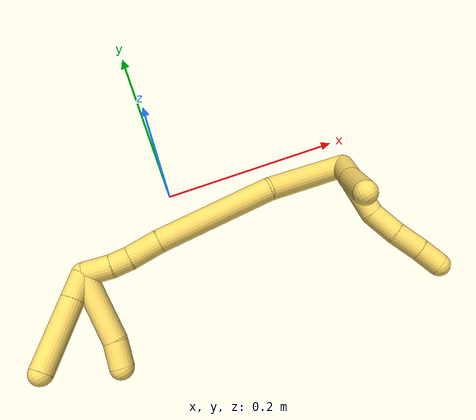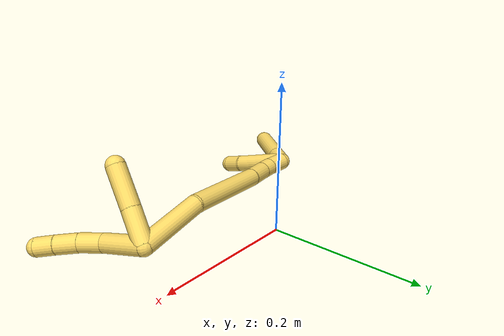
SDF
<sdf version="1.7">
 <world name="default">
  <model name="photoneo_s_sensor">
   <static>1</static>
   <pose>0 0 2 1.57079 1.57079 3.14159</pose>
   <link name="link">
    <inertial><mass>0.1</mass></inertial>
    <sensor name="sensor" type="depth">
     <update_rate>30</update_rate>
     <camera>
      <horizontal_fov>1.22</horizontal_fov>
      <image><width>1920</width><height>1200</height><format>B8G8R8</format></image>
      <clip><near>0.1</near><far>4</far></clip>
      <depth_camera><output>points</output></depth_camera>
     </camera>
     <plugin name="camera_plugin" filename="libgazebo_ros_depth_camera.so">
      <baseline>0.2</baseline>
      <alwaysOn>1</alwaysOn>
      <updateRate>0.0</updateRate>
      <cameraName>camera_ir</cameraName>
      <imageTopicName>/camera/color/image_raw</imageTopicName>
      <cameraInfoTopicName>/camera/color/camera_info</cameraInfoTopicName>
      <depthImageTopicName>/camera/depth/image_raw</depthImageTopicName>
      <depthImageCameraInfoTopicName>/camera/depth/camera_info</depthImageCameraInfoTopicName>
      <pointCloudTopicName>/camera/depth/points</pointCloudTopicName>
      <frameName>fr_optical</frameName>
      <pointCloudCutoff>0.1</pointCloudCutoff>
      <pointCloudCutoffMax>2.0</pointCloudCutoffMax>
      <distortionK1>0</distortionK1>
      <distortionK2>0</distortionK2>
      <distortionK3>0</distortionK3>
      <distortionT1>0</distortionT1>
      <distortionT2>0</distortionT2>
      <CxPrime>0</CxPrime>
      <Cx>0</Cx>
      <Cy>0</Cy>
      <focalLength>0</focalLength>
      <hackBaseline>0</hackBaseline>
     </plugin>
    </sensor>
   </link>
  </model>
  <model name="bin">
   <static>1</static>
   <link name="bottom">
    <collision name="collision-bottom">
     <pose>0 0 -0.01 0 -0 0</pose>
     <geometry><box><size>0.8 0.6 0.02</size></box></geometry>
     <surface>
      <friction><ode><mu>100</mu><mu2>100</mu2></ode></friction>
      <contact><collide_bitmask>65535</collide_bitmask></contact>
     </surface>
    </collision>
   </link>
   <link name="west_wall">
    <collision name="collision-west_wall">
     <pose>-0.41 0 0.1 0 -0 0</pose>
     <geometry><box><size>0.02 0.6 0.2</size></box></geometry>
     <surface>
      <friction><ode><mu>100</mu><mu2>100</mu2></ode></friction>
      <contact><collide_bitmask>65535</collide_bitmask></contact>
     </surface>
    </collision>
   </link>
   <link name="east_wall">
    <collision name="collision-east_wall">
     <pose>0.41 0 0.1 0 -0 0</pose>
     <geometry><box><size>0.02 0.6 0.2</size></box></geometry>
     <surface>
      <friction><ode><mu>100</mu><mu2>100</mu2></ode></friction>
      <contact><collide_bitmask>65535</collide_bitmask></contact>
     </surface>
    </collision>
   </link>
   <link name="south_wall">
    <collision name="collision-south_wall">
     <pose>0 -0.31 0.1 0 -0 0</pose>
     <geometry><box><size>0.8 0.02 0.2</size></box></geometry>
     <surface>
      <friction><ode><mu>100</mu><mu2>100</mu2></ode></friction>
      <contact><collide_bitmask>65535</collide_bitmask></contact>
     </surface>
    </collision>
   </link>
   <link name="north_wall">
    <collision name="collision-north_wall">
     <pose>0 0.31 0.1 0 -0 0</pose>
     <geometry><box><size>0.8 0.02 0.2</size></box></geometry>
     <surface>
      <friction><ode><mu>100</mu><mu2>100</mu2></ode></friction>
      <contact><collide_bitmask>65535</collide_bitmask></contact>
     </surface>
    </collision>
   </link>
  </model>
  <model name="5">
   <static>0</static>
   <link name="5">
    <collision name="collision-cylinder-e_1_2_8">
     <pose>-0.000439 0.000918 0.03058 -0.03002 -0.014344 0.000215</pose>
     <geometry><cylinder><radius>0.0125</radius><length>0.061194</length></cylinder></geometry>
     <surface>
      <friction><ode><mu>1.16</mu><mu2>1.16</mu2><slip1>0</slip1><slip2>0</slip2></ode></friction>
      <contact><ode><kp>1e+06</kp><kd>1</kd><max_vel>0</max_vel><min_depth>0.001</min_depth></ode></contact>
     </surface>
    </collision>
    <visual name="visual-cylinder-e_1_2_8">
     <pose>-0.000439 0.000918 0.03058 -0.03002 -0.014344 0.000215</pose>
     <geometry><cylinder><radius>0.0125</radius><length>0.061194</length></cylinder></geometry>
     <material><ambient>1 0.858824 0.4 1</ambient></material>
    </visual>
    <collision name="collision-cylinder-e_2_8_9">
     <pose>0.003906 0.003093 0.076479 -0.081831 0.301693 -0.012445</pose>
     <geometry><cylinder><radius>0.0125</radius><length>0.032196</length></cylinder></geometry>
     <surface>
      <friction><ode><mu>1.16</mu><mu2>1.16</mu2><slip1>0</slip1><slip2>0</slip2></ode></friction>
      <contact><ode><kp>1e+06</kp><kd>1</kd><max_vel>0</max_vel><min_depth>0.001</min_depth></ode></contact>
     </surface>
    </collision>
    <visual name="visual-cylinder-e_2_8_9">
     <pose>0.003906 0.003093 0.076479 -0.081831 0.301693 -0.012445</pose>
     <geometry><cylinder><radius>0.0125</radius><length>0.032196</length></cylinder></geometry>
     <material><ambient>1 0.858824 0.4 1</ambient></material>
    </visual>
    <collision name="collision-cylinder-e_3_9_10">
     <pose>0.014752 0.004587 0.105826 -0.01691 0.407916 -0.003498</pose>
     <geometry><cylinder><radius>0.0125</radius><length>0.030567</length></cylinder></geometry>
     <surface>
      <friction><ode><mu>1.16</mu><mu2>1.16</mu2><slip1>0</slip1><slip2>0</slip2></ode></friction>
      <contact><ode><kp>1e+06</kp><kd>1</kd><max_vel>0</max_vel><min_depth>0.001</min_depth></ode></contact>
     </surface>
    </collision>
    <visual name="visual-cylinder-e_3_9_10">
     <pose>0.014752 0.004587 0.105826 -0.01691 0.407916 -0.003498</pose>
     <geometry><cylinder><radius>0.0125</radius><length>0.030567</length></cylinder></geometry>
     <material><ambient>1 0.858824 0.4 1</ambient></material>
    </visual>
    <collision name="collision-cylinder-e_4_10_6">
     <pose>0.02533 0.004506 0.132063 0.026022 0.354154 0.004657</pose>
     <geometry><cylinder><radius>0.0125</radius><length>0.026043</length></cylinder></geometry>
     <surface>
      <friction><ode><mu>1.16</mu><mu2>1.16</mu2><slip1>0</slip1><slip2>0</slip2></ode></friction>
      <contact><ode><kp>1e+06</kp><kd>1</kd><max_vel>0</max_vel><min_depth>0.001</min_depth></ode></contact>
     </surface>
    </collision>
    <visual name="visual-cylinder-e_4_10_6">
     <pose>0.02533 0.004506 0.132063 0.026022 0.354154 0.004657</pose>
     <geometry><cylinder><radius>0.0125</radius><length>0.026043</length></cylinder></geometry>
     <material><ambient>1 0.858824 0.4 1</ambient></material>
    </visual>
    <collision name="collision-cylinder-e_1_2_11">
     <pose>-0.004574 0.020685 0.009047 -1.1585 -0.199872 0.130984</pose>
     <geometry><cylinder><radius>0.0125</radius><length>0.046071</length></cylinder></geometry>
     <surface>
      <friction><ode><mu>1.16</mu><mu2>1.16</mu2><slip1>0</slip1><slip2>0</slip2></ode></friction>
      <contact><ode><kp>1e+06</kp><kd>1</kd><max_vel>0</max_vel><min_depth>0.001</min_depth></ode></contact>
     </surface>
    </collision>
    <visual name="visual-cylinder-e_1_2_11">
     <pose>-0.004574 0.020685 0.009047 -1.1585 -0.199872 0.130984</pose>
     <geometry><cylinder><radius>0.0125</radius><length>0.046071</length></cylinder></geometry>
     <material><ambient>1 0.858824 0.4 1</ambient></material>
    </visual>
    <collision name="collision-cylinder-e_2_11_5">
     <pose>-0.012641 0.066361 0.027598 -1.20741 -0.129941 0.089672</pose>
     <geometry><cylinder><radius>0.0125</radius><length>0.053929</length></cylinder></geometry>
     <surface>
      <friction><ode><mu>1.16</mu><mu2>1.16</mu2><slip1>0</slip1><slip2>0</slip2></ode></friction>
      <contact><ode><kp>1e+06</kp><kd>1</kd><max_vel>0</max_vel><min_depth>0.001</min_depth></ode></contact>
     </surface>
    </collision>
    <visual name="visual-cylinder-e_2_11_5">
     <pose>-0.012641 0.066361 0.027598 -1.20741 -0.129941 0.089672</pose>
     <geometry><cylinder><radius>0.0125</radius><length>0.053929</length></cylinder></geometry>
     <material><ambient>1 0.858824 0.4 1</ambient></material>
    </visual>
    <collision name="collision-cylinder-e_1_2_12">
     <pose>-0.042597 0.01354 -0.009034 -2.15916 -1.20581 1.82037</pose>
     <geometry><cylinder><radius>0.0125</radius><length>0.091202</length></cylinder></geometry>
     <surface>
      <friction><ode><mu>1.16</mu><mu2>1.16</mu2><slip1>0</slip1><slip2>0</slip2></ode></friction>
      <contact><ode><kp>1e+06</kp><kd>1</kd><max_vel>0</max_vel><min_depth>0.001</min_depth></ode></contact>
     </surface>
    </collision>
    <visual name="visual-cylinder-e_1_2_12">
     <pose>-0.042597 0.01354 -0.009034 -2.15916 -1.20581 1.82037</pose>
     <geometry><cylinder><radius>0.0125</radius><length>0.091202</length></cylinder></geometry>
     <material><ambient>1 0.858824 0.4 1</ambient></material>
    </visual>
    <collision name="collision-cylinder-e_2_12_13">
     <pose>-0.147938 0.030487 -0.024182 -2.63325 -1.45969 2.57637</pose>
     <geometry><cylinder><radius>0.0125</radius><length>0.126266</length></cylinder></geometry>
     <surface>
      <friction><ode><mu>1.16</mu><mu2>1.16</mu2><slip1>0</slip1><slip2>0</slip2></ode></friction>
      <contact><ode><kp>1e+06</kp><kd>1</kd><max_vel>0</max_vel><min_depth>0.001</min_depth></ode></contact>
     </surface>
    </collision>
    <visual name="visual-cylinder-e_2_12_13">
     <pose>-0.147938 0.030487 -0.024182 -2.63325 -1.45969 2.57637</pose>
     <geometry><cylinder><radius>0.0125</radius><length>0.126266</length></cylinder></geometry>
     <material><ambient>1 0.858824 0.4 1</ambient></material>
    </visual>
    <collision name="collision-cylinder-e_3_13_14">
     <pose>-0.227503 0.03539 -0.03055 -1.73791 -1.48084 1.64854</pose>
     <geometry><cylinder><radius>0.0125</radius><length>0.033779</length></cylinder></geometry>
     <surface>
      <friction><ode><mu>1.16</mu><mu2>1.16</mu2><slip1>0</slip1><slip2>0</slip2></ode></friction>
      <contact><ode><kp>1e+06</kp><kd>1</kd><max_vel>0</max_vel><min_depth>0.001</min_depth></ode></contact>
     </surface>
    </collision>
    <visual name="visual-cylinder-e_3_13_14">
     <pose>-0.227503 0.03539 -0.03055 -1.73791 -1.48084 1.64854</pose>
     <geometry><cylinder><radius>0.0125</radius><length>0.033779</length></cylinder></geometry>
     <material><ambient>1 0.858824 0.4 1</ambient></material>
    </visual>
    <collision name="collision-cylinder-e_4_14_15">
     <pose>-0.254201 0.038017 -0.031956 -2.36629 -1.40871 2.24573</pose>
     <geometry><cylinder><radius>0.0125</radius><length>0.020017</length></cylinder></geometry>
     <surface>
      <friction><ode><mu>1.16</mu><mu2>1.16</mu2><slip1>0</slip1><slip2>0</slip2></ode></friction>
      <contact><ode><kp>1e+06</kp><kd>1</kd><max_vel>0</max_vel><min_depth>0.001</min_depth></ode></contact>
     </surface>
    </collision>
    <visual name="visual-cylinder-e_4_14_15">
     <pose>-0.254201 0.038017 -0.031956 -2.36629 -1.40871 2.24573</pose>
     <geometry><cylinder><radius>0.0125</radius><length>0.020017</length></cylinder></geometry>
     <material><ambient>1 0.858824 0.4 1</ambient></material>
    </visual>
    <collision name="collision-cylinder-e_5_15_1">
     <pose>-0.277875 0.040443 -0.036908 -2.81278 -1.28768 2.7065</pose>
     <geometry><cylinder><radius>0.0125</radius><length>0.028736</length></cylinder></geometry>
     <surface>
      <friction><ode><mu>1.16</mu><mu2>1.16</mu2><slip1>0</slip1><slip2>0</slip2></ode></friction>
      <contact><ode><kp>1e+06</kp><kd>1</kd><max_vel>0</max_vel><min_depth>0.001</min_depth></ode></contact>
     </surface>
    </collision>
    <visual name="visual-cylinder-e_5_15_1">
     <pose>-0.277875 0.040443 -0.036908 -2.81278 -1.28768 2.7065</pose>
     <geometry><cylinder><radius>0.0125</radius><length>0.028736</length></cylinder></geometry>
     <material><ambient>1 0.858824 0.4 1</ambient></material>
    </visual>
    <collision name="collision-cylinder-e_1_1_16">
     <pose>-0.294386 0.041411 -0.003949 0.008926 -0.073737 -0.000329</pose>
     <geometry><cylinder><radius>0.0125</radius><length>0.073718</length></cylinder></geometry>
     <surface>
      <friction><ode><mu>1.16</mu><mu2>1.16</mu2><slip1>0</slip1><slip2>0</slip2></ode></friction>
      <contact><ode><kp>1e+06</kp><kd>1</kd><max_vel>0</max_vel><min_depth>0.001</min_depth></ode></contact>
     </surface>
    </collision>
    <visual name="visual-cylinder-e_1_1_16">
     <pose>-0.294386 0.041411 -0.003949 0.008926 -0.073737 -0.000329</pose>
     <geometry><cylinder><radius>0.0125</radius><length>0.073718</length></cylinder></geometry>
     <material><ambient>1 0.858824 0.4 1</ambient></material>
    </visual>
    <collision name="collision-cylinder-e_2_16_4">
     <pose>-0.300614 0.041041 0.045471 0.003349 -0.270572 -0.000456</pose>
     <geometry><cylinder><radius>0.0125</radius><length>0.026282</length></cylinder></geometry>
     <surface>
      <friction><ode><mu>1.16</mu><mu2>1.16</mu2><slip1>0</slip1><slip2>0</slip2></ode></friction>
      <contact><ode><kp>1e+06</kp><kd>1</kd><max_vel>0</max_vel><min_depth>0.001</min_depth></ode></contact>
     </surface>
    </collision>
    <visual name="visual-cylinder-e_2_16_4">
     <pose>-0.300614 0.041041 0.045471 0.003349 -0.270572 -0.000456</pose>
     <geometry><cylinder><radius>0.0125</radius><length>0.026282</length></cylinder></geometry>
     <material><ambient>1 0.858824 0.4 1</ambient></material>
    </visual>
    <collision name="collision-cylinder-e_1_1_17">
     <pose>-0.30162 0.045015 -0.032363 -0.374101 -0.837432 0.16806</pose>
     <geometry><cylinder><radius>0.0125</radius><length>0.026783</length></cylinder></geometry>
     <surface>
      <friction><ode><mu>1.16</mu><mu2>1.16</mu2><slip1>0</slip1><slip2>0</slip2></ode></friction>
      <contact><ode><kp>1e+06</kp><kd>1</kd><max_vel>0</max_vel><min_depth>0.001</min_depth></ode></contact>
     </surface>
    </collision>
    <visual name="visual-cylinder-e_1_1_17">
     <pose>-0.30162 0.045015 -0.032363 -0.374101 -0.837432 0.16806</pose>
     <geometry><cylinder><radius>0.0125</radius><length>0.026783</length></cylinder></geometry>
     <material><ambient>1 0.858824 0.4 1</ambient></material>
    </visual>
    <collision name="collision-cylinder-e_2_17_3">
     <pose>-0.338115 0.058773 -0.001093 -0.428829 -0.811254 0.18649</pose>
     <geometry><cylinder><radius>0.0125</radius><length>0.073217</length></cylinder></geometry>
     <surface>
      <friction><ode><mu>1.16</mu><mu2>1.16</mu2><slip1>0</slip1><slip2>0</slip2></ode></friction>
      <contact><ode><kp>1e+06</kp><kd>1</kd><max_vel>0</max_vel><min_depth>0.001</min_depth></ode></contact>
     </surface>
    </collision>
    <visual name="visual-cylinder-e_2_17_3">
     <pose>-0.338115 0.058773 -0.001093 -0.428829 -0.811254 0.18649</pose>
     <geometry><cylinder><radius>0.0125</radius><length>0.073217</length></cylinder></geometry>
     <material><ambient>1 0.858824 0.4 1</ambient></material>
    </visual>
    <collision name="collision-sphere-3">
     <pose>-0.364662 0.069254 0.021833 0 -0 0</pose>
     <geometry><sphere><radius>0.0125</radius></sphere></geometry>
     <surface>
      <friction><ode><mu>1.16</mu><mu2>1.16</mu2><slip1>0</slip1><slip2>0</slip2></ode></friction>
      <contact><ode><kp>1e+06</kp><kd>1</kd><max_vel>0</max_vel><min_depth>0.001</min_depth></ode></contact>
     </surface>
    </collision>
    <visual name="visual-sphere-3">
     <pose>-0.364662 0.069254 0.021833 0 -0 0</pose>
     <geometry><sphere><radius>0.0125</radius></sphere></geometry>
     <material><ambient>1 0.858824 0.4 1</ambient></material>
    </visual>
    <collision name="collision-sphere-17">
     <pose>-0.311569 0.048291 -0.024019 0 -0 0</pose>
     <geometry><sphere><radius>0.0125</radius></sphere></geometry>
     <surface>
      <friction><ode><mu>1.16</mu><mu2>1.16</mu2><slip1>0</slip1><slip2>0</slip2></ode></friction>
      <contact><ode><kp>1e+06</kp><kd>1</kd><max_vel>0</max_vel><min_depth>0.001</min_depth></ode></contact>
     </surface>
    </collision>
    <visual name="visual-sphere-17">
     <pose>-0.311569 0.048291 -0.024019 0 -0 0</pose>
     <geometry><sphere><radius>0.0125</radius></sphere></geometry>
     <material><ambient>1 0.858824 0.4 1</ambient></material>
    </visual>
    <collision name="collision-sphere-4">
     <pose>-0.304126 0.040999 0.058134 0 -0 0</pose>
     <geometry><sphere><radius>0.0125</radius></sphere></geometry>
     <surface>
      <friction><ode><mu>1.16</mu><mu2>1.16</mu2><slip1>0</slip1><slip2>0</slip2></ode></friction>
      <contact><ode><kp>1e+06</kp><kd>1</kd><max_vel>0</max_vel><min_depth>0.001</min_depth></ode></contact>
     </surface>
    </collision>
    <visual name="visual-sphere-4">
     <pose>-0.304126 0.040999 0.058134 0 -0 0</pose>
     <geometry><sphere><radius>0.0125</radius></sphere></geometry>
     <material><ambient>1 0.858824 0.4 1</ambient></material>
    </visual>
    <collision name="collision-sphere-16">
     <pose>-0.297102 0.041083 0.032808 0 -0 0</pose>
     <geometry><sphere><radius>0.0125</radius></sphere></geometry>
     <surface>
      <friction><ode><mu>1.16</mu><mu2>1.16</mu2><slip1>0</slip1><slip2>0</slip2></ode></friction>
      <contact><ode><kp>1e+06</kp><kd>1</kd><max_vel>0</max_vel><min_depth>0.001</min_depth></ode></contact>
     </surface>
    </collision>
    <visual name="visual-sphere-16">
     <pose>-0.297102 0.041083 0.032808 0 -0 0</pose>
     <geometry><sphere><radius>0.0125</radius></sphere></geometry>
     <material><ambient>1 0.858824 0.4 1</ambient></material>
    </visual>
    <collision name="collision-sphere-1">
     <pose>-0.291671 0.04174 -0.040707 0 -0 0</pose>
     <geometry><sphere><radius>0.0125</radius></sphere></geometry>
     <surface>
      <friction><ode><mu>1.16</mu><mu2>1.16</mu2><slip1>0</slip1><slip2>0</slip2></ode></friction>
      <contact><ode><kp>1e+06</kp><kd>1</kd><max_vel>0</max_vel><min_depth>0.001</min_depth></ode></contact>
     </surface>
    </collision>
    <visual name="visual-sphere-1">
     <pose>-0.291671 0.04174 -0.040707 0 -0 0</pose>
     <geometry><sphere><radius>0.0125</radius></sphere></geometry>
     <material><ambient>1 0.858824 0.4 1</ambient></material>
    </visual>
    <collision name="collision-sphere-15">
     <pose>-0.264079 0.039147 -0.033109 0 -0 0</pose>
     <geometry><sphere><radius>0.0125</radius></sphere></geometry>
     <surface>
      <friction><ode><mu>1.16</mu><mu2>1.16</mu2><slip1>0</slip1><slip2>0</slip2></ode></friction>
      <contact><ode><kp>1e+06</kp><kd>1</kd><max_vel>0</max_vel><min_depth>0.001</min_depth></ode></contact>
     </surface>
    </collision>
    <visual name="visual-sphere-15">
     <pose>-0.264079 0.039147 -0.033109 0 -0 0</pose>
     <geometry><sphere><radius>0.0125</radius></sphere></geometry>
     <material><ambient>1 0.858824 0.4 1</ambient></material>
    </visual>
    <collision name="collision-sphere-14">
     <pose>-0.244324 0.036886 -0.030802 0 -0 0</pose>
     <geometry><sphere><radius>0.0125</radius></sphere></geometry>
     <surface>
      <friction><ode><mu>1.16</mu><mu2>1.16</mu2><slip1>0</slip1><slip2>0</slip2></ode></friction>
      <contact><ode><kp>1e+06</kp><kd>1</kd><max_vel>0</max_vel><min_depth>0.001</min_depth></ode></contact>
     </surface>
    </collision>
    <visual name="visual-sphere-14">
     <pose>-0.244324 0.036886 -0.030802 0 -0 0</pose>
     <geometry><sphere><radius>0.0125</radius></sphere></geometry>
     <material><ambient>1 0.858824 0.4 1</ambient></material>
    </visual>
    <collision name="collision-sphere-13">
     <pose>-0.210682 0.033894 -0.030297 0 -0 0</pose>
     <geometry><sphere><radius>0.0125</radius></sphere></geometry>
     <surface>
      <friction><ode><mu>1.16</mu><mu2>1.16</mu2><slip1>0</slip1><slip2>0</slip2></ode></friction>
      <contact><ode><kp>1e+06</kp><kd>1</kd><max_vel>0</max_vel><min_depth>0.001</min_depth></ode></contact>
     </surface>
    </collision>
    <visual name="visual-sphere-13">
     <pose>-0.210682 0.033894 -0.030297 0 -0 0</pose>
     <geometry><sphere><radius>0.0125</radius></sphere></geometry>
     <material><ambient>1 0.858824 0.4 1</ambient></material>
    </visual>
    <collision name="collision-sphere-12">
     <pose>-0.085194 0.02708 -0.018067 0 -0 0</pose>
     <geometry><sphere><radius>0.0125</radius></sphere></geometry>
     <surface>
      <friction><ode><mu>1.16</mu><mu2>1.16</mu2><slip1>0</slip1><slip2>0</slip2></ode></friction>
      <contact><ode><kp>1e+06</kp><kd>1</kd><max_vel>0</max_vel><min_depth>0.001</min_depth></ode></contact>
     </surface>
    </collision>
    <visual name="visual-sphere-12">
     <pose>-0.085194 0.02708 -0.018067 0 -0 0</pose>
     <geometry><sphere><radius>0.0125</radius></sphere></geometry>
     <material><ambient>1 0.858824 0.4 1</ambient></material>
    </visual>
    <collision name="collision-sphere-5">
     <pose>-0.016135 0.091352 0.037101 0 -0 0</pose>
     <geometry><sphere><radius>0.0125</radius></sphere></geometry>
     <surface>
      <friction><ode><mu>1.16</mu><mu2>1.16</mu2><slip1>0</slip1><slip2>0</slip2></ode></friction>
      <contact><ode><kp>1e+06</kp><kd>1</kd><max_vel>0</max_vel><min_depth>0.001</min_depth></ode></contact>
     </surface>
    </collision>
    <visual name="visual-sphere-5">
     <pose>-0.016135 0.091352 0.037101 0 -0 0</pose>
     <geometry><sphere><radius>0.0125</radius></sphere></geometry>
     <material><ambient>1 0.858824 0.4 1</ambient></material>
    </visual>
    <collision name="collision-sphere-8">
     <pose>-0.000878 0.001837 0.06116 0 -0 0</pose>
     <geometry><sphere><radius>0.0125</radius></sphere></geometry>
     <surface>
      <friction><ode><mu>1.16</mu><mu2>1.16</mu2><slip1>0</slip1><slip2>0</slip2></ode></friction>
      <contact><ode><kp>1e+06</kp><kd>1</kd><max_vel>0</max_vel><min_depth>0.001</min_depth></ode></contact>
     </surface>
    </collision>
    <visual name="visual-sphere-8">
     <pose>-0.000878 0.001837 0.06116 0 -0 0</pose>
     <geometry><sphere><radius>0.0125</radius></sphere></geometry>
     <material><ambient>1 0.858824 0.4 1</ambient></material>
    </visual>
    <collision name="collision-sphere-2">
     <geometry><sphere><radius>0.0125</radius></sphere></geometry>
     <surface>
      <friction><ode><mu>1.16</mu><mu2>1.16</mu2><slip1>0</slip1><slip2>0</slip2></ode></friction>
      <contact><ode><kp>1e+06</kp><kd>1</kd><max_vel>0</max_vel><min_depth>0.001</min_depth></ode></contact>
     </surface>
    </collision>
    <visual name="visual-sphere-2">
     <geometry><sphere><radius>0.0125</radius></sphere></geometry>
     <material><ambient>1 0.858824 0.4 1</ambient></material>
    </visual>
    <collision name="collision-sphere-9">
     <pose>0.008689 0.004349 0.091799 0 -0 0</pose>
     <geometry><sphere><radius>0.0125</radius></sphere></geometry>
     <surface>
      <friction><ode><mu>1.16</mu><mu2>1.16</mu2><slip1>0</slip1><slip2>0</slip2></ode></friction>
      <contact><ode><kp>1e+06</kp><kd>1</kd><max_vel>0</max_vel><min_depth>0.001</min_depth></ode></contact>
     </surface>
    </collision>
    <visual name="visual-sphere-9">
     <pose>0.008689 0.004349 0.091799 0 -0 0</pose>
     <geometry><sphere><radius>0.0125</radius></sphere></geometry>
     <material><ambient>1 0.858824 0.4 1</ambient></material>
    </visual>
    <collision name="collision-sphere-10">
     <pose>0.020815 0.004824 0.119854 0 -0 0</pose>
     <geometry><sphere><radius>0.0125</radius></sphere></geometry>
     <surface>
      <friction><ode><mu>1.16</mu><mu2>1.16</mu2><slip1>0</slip1><slip2>0</slip2></ode></friction>
      <contact><ode><kp>1e+06</kp><kd>1</kd><max_vel>0</max_vel><min_depth>0.001</min_depth></ode></contact>
     </surface>
    </collision>
    <visual name="visual-sphere-10">
     <pose>0.020815 0.004824 0.119854 0 -0 0</pose>
     <geometry><sphere><radius>0.0125</radius></sphere></geometry>
     <material><ambient>1 0.858824 0.4 1</ambient></material>
    </visual>
    <collision name="collision-sphere-6">
     <pose>0.029846 0.004188 0.144273 0 -0 0</pose>
     <geometry><sphere><radius>0.0125</radius></sphere></geometry>
     <surface>
      <friction><ode><mu>1.16</mu><mu2>1.16</mu2><slip1>0</slip1><slip2>0</slip2></ode></friction>
      <contact><ode><kp>1e+06</kp><kd>1</kd><max_vel>0</max_vel><min_depth>0.001</min_depth></ode></contact>
     </surface>
    </collision>
    <visual name="visual-sphere-6">
     <pose>0.029846 0.004188 0.144273 0 -0 0</pose>
     <geometry><sphere><radius>0.0125</radius></sphere></geometry>
     <material><ambient>1 0.858824 0.4 1</ambient></material>
    </visual>
    <collision name="collision-sphere-11">
     <pose>-0.009147 0.04137 0.018094 0 -0 0</pose>
     <geometry><sphere><radius>0.0125</radius></sphere></geometry>
     <surface>
      <friction><ode><mu>1.16</mu><mu2>1.16</mu2><slip1>0</slip1><slip2>0</slip2></ode></friction>
      <contact><ode><kp>1e+06</kp><kd>1</kd><max_vel>0</max_vel><min_depth>0.001</min_depth></ode></contact>
     </surface>
    </collision>
    <visual name="visual-sphere-11">
     <pose>-0.009147 0.04137 0.018094 0 -0 0</pose>
     <geometry><sphere><radius>0.0125</radius></sphere></geometry>
     <material><ambient>1 0.858824 0.4 1</ambient></material>
    </visual>
    <inertial>
     <pose>-0.140589 0.030384 0.008347 0 -0 0</pose>
     <mass>0.75</mass>
     <inertia>
      <ixx>0.00011</ixx>
      <ixy>0</ixy>
      <ixz>0</ixz>
      <iyy>0.000412</iyy>
      <iyz>0</iyz>
      <izz>0.000234</izz>
     </inertia>
    </inertial>
   </link>
   <pose>0.188898 -0.04711 0.038859 1.81423 -0.133185 0.182207</pose>
  </model>
 </world>
</sdf>
